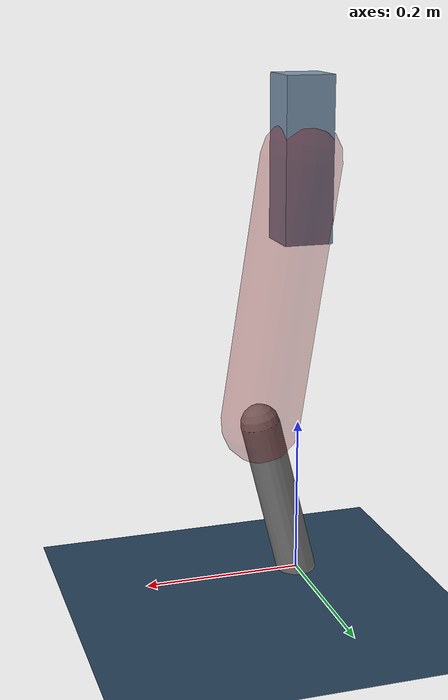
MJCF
<mujoco model="Hopper2D">
	<compiler inertiafromgeom="true" angle="radian" />
	<option timestep="0.001" integrator="implicit" cone="elliptic" solver="Newton" tolerance="1e-10" />

	<default>
		<geom contype="1" conaffinity="1" condim="3" friction="2 0.005 0.0001" solref="0.005 1" />
		<joint limited="true" damping="0.1" />
	</default>

	<asset>
		<texture name="skybox" type="skybox" builtin="gradient" rgb1=".4 .6 .8" rgb2="0 0 0" width="800" height="800" />
		<texture name="grid" type="2d" builtin="checker" rgb1=".1 .2 .3" rgb2=".2 .3 .4" width="300" height="300" mark="edge" markrgb=".2 .3 .4" />
		<material name="ground" texture="grid" texrepeat="1 1" texuniform="true" reflectance="0.1" />
		<material name="leg" rgba="0.5 0.6 0.7 1" />
	</asset>

	<worldbody>

		<geom name="floor" type="plane" size="5 5 0.25" material="ground" />

		<light directional="false" diffuse="0.8 0.8 0.8" specular="0.3 0.3 0.3" pos="0 0 2" dir="0 0 -1" />
		<light mode="targetbodycom" target="base" directional="false" diffuse="0.8 0.8 0.8" specular="0.3 0.3 0.3" pos="0 0 2" dir="0 0 -1" />

		<camera name="fixed" pos="0 -2 1" xyaxes="1 0 0 0 0 1" />
		<camera name="tracking" mode="trackcom" pos="0 -3 1" />

		<body name="root" pos="0 0 0.5334391831960311">
			<joint name="slide_x" type="slide" axis="1 0 0" range="-100 100" />
			<joint name="slide_z" type="slide" axis="0 0 1" range="0 10" />

			<body name="base" pos="0 0 0">
				<geom name="torso" type="box" size="0.03 0.03 0.1" mass="2.448" material="leg" />

				<body name="link1" pos="0 0 0" euler="0 1.4193110810252834 0">
					<joint type="hinge" axis="0 -1 0" pos="0 0 0" name="hinge1" limited="true" range="-3.14 3.14" stiffness="0" damping="0.1" />
					<geom name="thigh" type="capsule" fromto="0 0 0 0.33424894736822525 0 0" size="0.05" rgba="0.5 0 0 0.3" mass="1.0825970526310307" />

					<body name="link2" pos="0.33424894736822525 0 0" euler="0 0.39500695609245323 0">
						<joint type="hinge" axis="0 -1 0" pos="0 0 0" name="hinge2" limited="true" range="-3.14 3.14" stiffness="0" damping="0.1" />
						<geom name="shank" type="capsule" fromto="0 0 0 0.2091902358278059 0 0" size="0.025" mass="0.40865218866224473" />

					</body>
				</body>
			</body>
		</body>
	</worldbody>

	<actuator>
		<motor name="torque1" joint="hinge1" ctrlrange="-57.995355013973324 57.995355013973324" ctrllimited="true" gear="1" />
		<motor name="torque2" joint="hinge2" ctrlrange="-91.3322233574587 91.3322233574587" ctrllimited="true" gear="1" />
	</actuator>
</mujoco>
